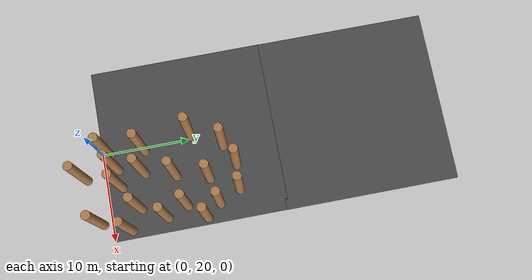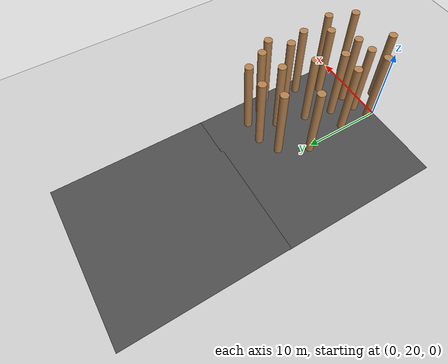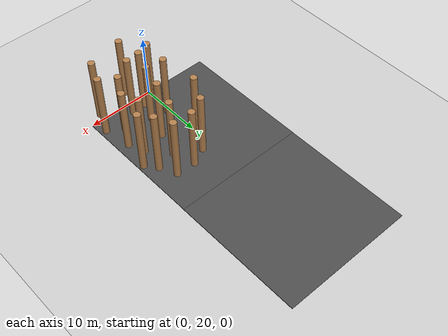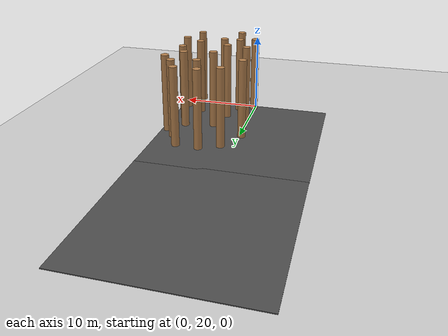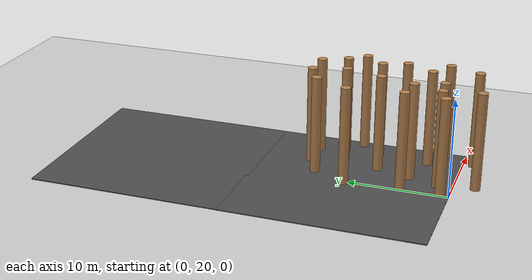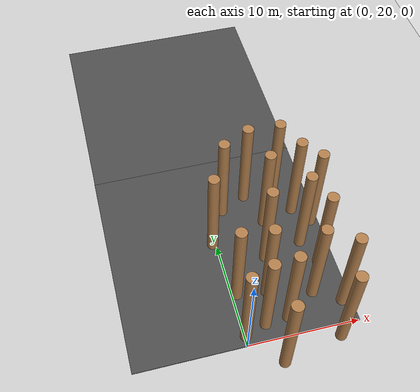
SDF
<sdf version="1.6">
 <world name="default">
  <model name="ground_plane">
   <static>1</static>
   <link name="link">
    <collision name="collision">
     <geometry><plane><normal>0 0 1</normal><size>100 100</size></plane></geometry>
     <surface><friction><ode><mu>100</mu><mu2>50</mu2></ode></friction></surface>
    </collision>
    <visual name="visual">
     <cast_shadows>0</cast_shadows>
     <geometry><plane><normal>0 0 1</normal><size>100 100</size></plane></geometry>
     <material>
      <script><uri>file://media/materials/scripts/gazebo.material</uri><name>Gazebo/Grey</name></script>
     </material>
    </visual>
   </link>
  </model>
  <model name="asphalt_plane_2">
   <static>1</static>
   <link name="link">
    <collision name="collision"><geometry><box><size>20 20 0.1</size></box></geometry></collision>
    <visual name="visual">
     <cast_shadows>0</cast_shadows>
     <geometry><box><size>20 20 0.1</size></box></geometry>
     <material>
      <script>
       <uri>model://asphalt_plane/materials/scripts</uri>
       <uri>model://asphalt_plane/materials/textures</uri>
       <name>vrc/asphalt</name>
      </script>
     </material>
    </visual>
   </link>
   <pose>0.117642 29.9977 0 0 -0 0</pose>
  </model>
  <model name="test_1">
   <link name="link_0_clone_0_clone_5_clone_12_clone_12">
    <pose>6.29003 17.4838 0.043478 0 -0 6e-06</pose>
    <inertial>
     <mass>1000</mass>
     <inertia><ixx>0.145833</ixx><ixy>0</ixy><ixz>0</ixz><iyy>0.145833</iyy><iyz>0</iyz><izz>0.125</izz></inertia>
    </inertial>
    <visual name="visual">
     <pose>0 0 4.5 0 -0 0</pose>
     <geometry><cylinder><radius>0.5</radius><length>10</length></cylinder></geometry>
     <material>
      <lighting>1</lighting>
      <script><uri>file://media/materials/scripts/gazebo.material</uri><name>Gazebo/WoodFloor</name></script>
      <ambient>0.3 0.3 0.3 1</ambient>
      <diffuse>0.7 0.7 0.7 1</diffuse>
      <specular>0.01 0.01 0.01 1</specular>
      <emissive>0 0 0 1</emissive>
      <shader type="vertex"><normal_map>__default__</normal_map></shader>
     </material>
    </visual>
    <collision name="collision">
     <pose>0 0 4.5 0 -0 0</pose>
     <geometry><cylinder><radius>0.5</radius><length>10</length></cylinder></geometry>
     <surface>
      <friction>
       <ode><mu>1</mu><mu2>1</mu2><fdir1>0 0 0</fdir1><slip1>0</slip1><slip2>0</slip2></ode>
       <torsional>
        <coefficient>1</coefficient>
        <patch_radius>0</patch_radius>
        <surface_radius>0</surface_radius>
        <use_patch_radius>1</use_patch_radius>
        <ode><slip>0</slip></ode>
       </torsional>
      </friction>
      <bounce><restitution_coefficient>0</restitution_coefficient><threshold>1e+06</threshold></bounce>
      <contact>
       <collide_without_contact>0</collide_without_contact>
       <collide_without_contact_bitmask>1</collide_without_contact_bitmask>
       <collide_bitmask>1</collide_bitmask>
       <ode>
        <soft_cfm>0</soft_cfm>
        <soft_erp>0.2</soft_erp>
        <kp>1e+13</kp>
        <kd>1</kd>
        <max_vel>0.01</max_vel>
        <min_depth>0</min_depth>
       </ode>
       <bullet>
        <split_impulse>1</split_impulse>
        <split_impulse_penetration_threshold>-0.01</split_impulse_penetration_threshold>
        <soft_cfm>0</soft_cfm>
        <soft_erp>0.2</soft_erp>
        <kp>1e+13</kp>
        <kd>1</kd>
       </bullet>
      </contact>
     </surface>
    </collision>
   </link>
   <link name="link_0_clone_0_clone_5_clone_12_clone_15">
    <pose>9.27042 4.78102 0.043478 0 -0 6e-06</pose>
    <inertial>
     <mass>1000</mass>
     <inertia><ixx>0.145833</ixx><ixy>0</ixy><ixz>0</ixz><iyy>0.145833</iyy><iyz>0</iyz><izz>0.125</izz></inertia>
    </inertial>
    <visual name="visual">
     <pose>0 0 4.5 0 -0 0</pose>
     <geometry><cylinder><radius>0.5</radius><length>10</length></cylinder></geometry>
     <material>
      <lighting>1</lighting>
      <script><uri>file://media/materials/scripts/gazebo.material</uri><name>Gazebo/WoodFloor</name></script>
      <ambient>0.3 0.3 0.3 1</ambient>
      <diffuse>0.7 0.7 0.7 1</diffuse>
      <specular>0.01 0.01 0.01 1</specular>
      <emissive>0 0 0 1</emissive>
      <shader type="vertex"><normal_map>__default__</normal_map></shader>
     </material>
    </visual>
    <collision name="collision">
     <pose>0 0 4.5 0 -0 0</pose>
     <geometry><cylinder><radius>0.5</radius><length>10</length></cylinder></geometry>
     <surface>
      <friction>
       <ode><mu>1</mu><mu2>1</mu2><fdir1>0 0 0</fdir1><slip1>0</slip1><slip2>0</slip2></ode>
       <torsional>
        <coefficient>1</coefficient>
        <patch_radius>0</patch_radius>
        <surface_radius>0</surface_radius>
        <use_patch_radius>1</use_patch_radius>
        <ode><slip>0</slip></ode>
       </torsional>
      </friction>
      <bounce><restitution_coefficient>0</restitution_coefficient><threshold>1e+06</threshold></bounce>
      <contact>
       <collide_without_contact>0</collide_without_contact>
       <collide_without_contact_bitmask>1</collide_without_contact_bitmask>
       <collide_bitmask>1</collide_bitmask>
       <ode>
        <soft_cfm>0</soft_cfm>
        <soft_erp>0.2</soft_erp>
        <kp>1e+13</kp>
        <kd>1</kd>
        <max_vel>0.01</max_vel>
        <min_depth>0</min_depth>
       </ode>
       <bullet>
        <split_impulse>1</split_impulse>
        <split_impulse_penetration_threshold>-0.01</split_impulse_penetration_threshold>
        <soft_cfm>0</soft_cfm>
        <soft_erp>0.2</soft_erp>
        <kp>1e+13</kp>
        <kd>1</kd>
       </bullet>
      </contact>
     </surface>
    </collision>
   </link>
   <link name="link_0_clone_0_clone_5_clone_12_clone_4_clone_12">
    <pose>1.39378 6.66185 0.043478 0 -0 9e-06</pose>
    <inertial>
     <mass>1000</mass>
     <inertia><ixx>0.145833</ixx><ixy>0</ixy><ixz>0</ixz><iyy>0.145833</iyy><iyz>0</iyz><izz>0.125</izz></inertia>
    </inertial>
    <visual name="visual">
     <pose>0 0 4.5 0 -0 0</pose>
     <geometry><cylinder><radius>0.5</radius><length>10</length></cylinder></geometry>
     <material>
      <lighting>1</lighting>
      <script><uri>file://media/materials/scripts/gazebo.material</uri><name>Gazebo/WoodFloor</name></script>
      <ambient>0.3 0.3 0.3 1</ambient>
      <diffuse>0.7 0.7 0.7 1</diffuse>
      <specular>0.01 0.01 0.01 1</specular>
      <emissive>0 0 0 1</emissive>
      <shader type="vertex"><normal_map>__default__</normal_map></shader>
     </material>
    </visual>
    <collision name="collision">
     <pose>0 0 4.5 0 -0 0</pose>
     <geometry><cylinder><radius>0.5</radius><length>10</length></cylinder></geometry>
     <surface>
      <friction>
       <ode><mu>1</mu><mu2>1</mu2><fdir1>0 0 0</fdir1><slip1>0</slip1><slip2>0</slip2></ode>
       <torsional>
        <coefficient>1</coefficient>
        <patch_radius>0</patch_radius>
        <surface_radius>0</surface_radius>
        <use_patch_radius>1</use_patch_radius>
        <ode><slip>0</slip></ode>
       </torsional>
      </friction>
      <bounce><restitution_coefficient>0</restitution_coefficient><threshold>1e+06</threshold></bounce>
      <contact>
       <collide_without_contact>0</collide_without_contact>
       <collide_without_contact_bitmask>1</collide_without_contact_bitmask>
       <collide_bitmask>1</collide_bitmask>
       <ode>
        <soft_cfm>0</soft_cfm>
        <soft_erp>0.2</soft_erp>
        <kp>1e+13</kp>
        <kd>1</kd>
        <max_vel>0.01</max_vel>
        <min_depth>0</min_depth>
       </ode>
       <bullet>
        <split_impulse>1</split_impulse>
        <split_impulse_penetration_threshold>-0.01</split_impulse_penetration_threshold>
        <soft_cfm>0</soft_cfm>
        <soft_erp>0.2</soft_erp>
        <kp>1e+13</kp>
        <kd>1</kd>
       </bullet>
      </contact>
     </surface>
    </collision>
   </link>
   <link name="link_0_clone_0_clone_5_clone_12_clone_4_clone_13">
    <pose>3.34294 7.33135 0.043478 0 -0 9e-06</pose>
    <inertial>
     <mass>1000</mass>
     <inertia><ixx>0.145833</ixx><ixy>0</ixy><ixz>0</ixz><iyy>0.145833</iyy><iyz>0</iyz><izz>0.125</izz></inertia>
    </inertial>
    <visual name="visual">
     <pose>0 0 4.5 0 -0 0</pose>
     <geometry><cylinder><radius>0.5</radius><length>10</length></cylinder></geometry>
     <material>
      <lighting>1</lighting>
      <script><uri>file://media/materials/scripts/gazebo.material</uri><name>Gazebo/WoodFloor</name></script>
      <ambient>0.3 0.3 0.3 1</ambient>
      <diffuse>0.7 0.7 0.7 1</diffuse>
      <specular>0.01 0.01 0.01 1</specular>
      <emissive>0 0 0 1</emissive>
      <shader type="vertex"><normal_map>__default__</normal_map></shader>
     </material>
    </visual>
    <collision name="collision">
     <pose>0 0 4.5 0 -0 0</pose>
     <geometry><cylinder><radius>0.5</radius><length>10</length></cylinder></geometry>
     <surface>
      <friction>
       <ode><mu>1</mu><mu2>1</mu2><fdir1>0 0 0</fdir1><slip1>0</slip1><slip2>0</slip2></ode>
       <torsional>
        <coefficient>1</coefficient>
        <patch_radius>0</patch_radius>
        <surface_radius>0</surface_radius>
        <use_patch_radius>1</use_patch_radius>
        <ode><slip>0</slip></ode>
       </torsional>
      </friction>
      <bounce><restitution_coefficient>0</restitution_coefficient><threshold>1e+06</threshold></bounce>
      <contact>
       <collide_without_contact>0</collide_without_contact>
       <collide_without_contact_bitmask>1</collide_without_contact_bitmask>
       <collide_bitmask>1</collide_bitmask>
       <ode>
        <soft_cfm>0</soft_cfm>
        <soft_erp>0.2</soft_erp>
        <kp>1e+13</kp>
        <kd>1</kd>
        <max_vel>0.01</max_vel>
        <min_depth>0</min_depth>
       </ode>
       <bullet>
        <split_impulse>1</split_impulse>
        <split_impulse_penetration_threshold>-0.01</split_impulse_penetration_threshold>
        <soft_cfm>0</soft_cfm>
        <soft_erp>0.2</soft_erp>
        <kp>1e+13</kp>
        <kd>1</kd>
       </bullet>
      </contact>
     </surface>
    </collision>
   </link>
   <link name="link_0_clone_0_clone_5_clone_12_clone_4_clone_14">
    <pose>5.44286 7.49755 0.043478 0 -0 9e-06</pose>
    <inertial>
     <mass>1000</mass>
     <inertia><ixx>0.145833</ixx><ixy>0</ixy><ixz>0</ixz><iyy>0.145833</iyy><iyz>0</iyz><izz>0.125</izz></inertia>
    </inertial>
    <visual name="visual">
     <pose>0 0 4.5 0 -0 0</pose>
     <geometry><cylinder><radius>0.5</radius><length>10</length></cylinder></geometry>
     <material>
      <lighting>1</lighting>
      <script><uri>file://media/materials/scripts/gazebo.material</uri><name>Gazebo/WoodFloor</name></script>
      <ambient>0.3 0.3 0.3 1</ambient>
      <diffuse>0.7 0.7 0.7 1</diffuse>
      <specular>0.01 0.01 0.01 1</specular>
      <emissive>0 0 0 1</emissive>
      <shader type="vertex"><normal_map>__default__</normal_map></shader>
     </material>
    </visual>
    <collision name="collision">
     <pose>0 0 4.5 0 -0 0</pose>
     <geometry><cylinder><radius>0.5</radius><length>10</length></cylinder></geometry>
     <surface>
      <friction>
       <ode><mu>1</mu><mu2>1</mu2><fdir1>0 0 0</fdir1><slip1>0</slip1><slip2>0</slip2></ode>
       <torsional>
        <coefficient>1</coefficient>
        <patch_radius>0</patch_radius>
        <surface_radius>0</surface_radius>
        <use_patch_radius>1</use_patch_radius>
        <ode><slip>0</slip></ode>
       </torsional>
      </friction>
      <bounce><restitution_coefficient>0</restitution_coefficient><threshold>1e+06</threshold></bounce>
      <contact>
       <collide_without_contact>0</collide_without_contact>
       <collide_without_contact_bitmask>1</collide_without_contact_bitmask>
       <collide_bitmask>1</collide_bitmask>
       <ode>
        <soft_cfm>0</soft_cfm>
        <soft_erp>0.2</soft_erp>
        <kp>1e+13</kp>
        <kd>1</kd>
        <max_vel>0.01</max_vel>
        <min_depth>0</min_depth>
       </ode>
       <bullet>
        <split_impulse>1</split_impulse>
        <split_impulse_penetration_threshold>-0.01</split_impulse_penetration_threshold>
        <soft_cfm>0</soft_cfm>
        <soft_erp>0.2</soft_erp>
        <kp>1e+13</kp>
        <kd>1</kd>
       </bullet>
      </contact>
     </surface>
    </collision>
   </link>
   <link name="link_0_clone_0_clone_5_clone_12_clone_4_clone_15">
    <pose>8.26468 9.27656 0.043478 0 -0 9e-06</pose>
    <inertial>
     <mass>1000</mass>
     <inertia><ixx>0.145833</ixx><ixy>0</ixy><ixz>0</ixz><iyy>0.145833</iyy><iyz>0</iyz><izz>0.125</izz></inertia>
    </inertial>
    <visual name="visual">
     <pose>0 0 4.5 0 -0 0</pose>
     <geometry><cylinder><radius>0.5</radius><length>10</length></cylinder></geometry>
     <material>
      <lighting>1</lighting>
      <script><uri>file://media/materials/scripts/gazebo.material</uri><name>Gazebo/WoodFloor</name></script>
      <ambient>0.3 0.3 0.3 1</ambient>
      <diffuse>0.7 0.7 0.7 1</diffuse>
      <specular>0.01 0.01 0.01 1</specular>
      <emissive>0 0 0 1</emissive>
      <shader type="vertex"><normal_map>__default__</normal_map></shader>
     </material>
    </visual>
    <collision name="collision">
     <pose>0 0 4.5 0 -0 0</pose>
     <geometry><cylinder><radius>0.5</radius><length>10</length></cylinder></geometry>
     <surface>
      <friction>
       <ode><mu>1</mu><mu2>1</mu2><fdir1>0 0 0</fdir1><slip1>0</slip1><slip2>0</slip2></ode>
       <torsional>
        <coefficient>1</coefficient>
        <patch_radius>0</patch_radius>
        <surface_radius>0</surface_radius>
        <use_patch_radius>1</use_patch_radius>
        <ode><slip>0</slip></ode>
       </torsional>
      </friction>
      <bounce><restitution_coefficient>0</restitution_coefficient><threshold>1e+06</threshold></bounce>
      <contact>
       <collide_without_contact>0</collide_without_contact>
       <collide_without_contact_bitmask>1</collide_without_contact_bitmask>
       <collide_bitmask>1</collide_bitmask>
       <ode>
        <soft_cfm>0</soft_cfm>
        <soft_erp>0.2</soft_erp>
        <kp>1e+13</kp>
        <kd>1</kd>
        <max_vel>0.01</max_vel>
        <min_depth>0</min_depth>
       </ode>
       <bullet>
        <split_impulse>1</split_impulse>
        <split_impulse_penetration_threshold>-0.01</split_impulse_penetration_threshold>
        <soft_cfm>0</soft_cfm>
        <soft_erp>0.2</soft_erp>
        <kp>1e+13</kp>
        <kd>1</kd>
       </bullet>
      </contact>
     </surface>
    </collision>
   </link>
   <link name="link_0_clone_0_clone_5_clone_12_clone_4_clone_16">
    <pose>4.33796 10.2753 0.043478 0 -0 9e-06</pose>
    <inertial>
     <mass>1000</mass>
     <inertia><ixx>0.145833</ixx><ixy>0</ixy><ixz>0</ixz><iyy>0.145833</iyy><iyz>0</iyz><izz>0.125</izz></inertia>
    </inertial>
    <visual name="visual">
     <pose>0 0 4.5 0 -0 0</pose>
     <geometry><cylinder><radius>0.5</radius><length>10</length></cylinder></geometry>
     <material>
      <lighting>1</lighting>
      <script><uri>file://media/materials/scripts/gazebo.material</uri><name>Gazebo/WoodFloor</name></script>
      <ambient>0.3 0.3 0.3 1</ambient>
      <diffuse>0.7 0.7 0.7 1</diffuse>
      <specular>0.01 0.01 0.01 1</specular>
      <emissive>0 0 0 1</emissive>
      <shader type="vertex"><normal_map>__default__</normal_map></shader>
     </material>
    </visual>
    <collision name="collision">
     <pose>0 0 4.5 0 -0 0</pose>
     <geometry><cylinder><radius>0.5</radius><length>10</length></cylinder></geometry>
     <surface>
      <friction>
       <ode><mu>1</mu><mu2>1</mu2><fdir1>0 0 0</fdir1><slip1>0</slip1><slip2>0</slip2></ode>
       <torsional>
        <coefficient>1</coefficient>
        <patch_radius>0</patch_radius>
        <surface_radius>0</surface_radius>
        <use_patch_radius>1</use_patch_radius>
        <ode><slip>0</slip></ode>
       </torsional>
      </friction>
      <bounce><restitution_coefficient>0</restitution_coefficient><threshold>1e+06</threshold></bounce>
      <contact>
       <collide_without_contact>0</collide_without_contact>
       <collide_without_contact_bitmask>1</collide_without_contact_bitmask>
       <collide_bitmask>1</collide_bitmask>
       <ode>
        <soft_cfm>0</soft_cfm>
        <soft_erp>0.2</soft_erp>
        <kp>1e+13</kp>
        <kd>1</kd>
        <max_vel>0.01</max_vel>
        <min_depth>0</min_depth>
       </ode>
       <bullet>
        <split_impulse>1</split_impulse>
        <split_impulse_penetration_threshold>-0.01</split_impulse_penetration_threshold>
        <soft_cfm>0</soft_cfm>
        <soft_erp>0.2</soft_erp>
        <kp>1e+13</kp>
        <kd>1</kd>
       </bullet>
      </contact>
     </surface>
    </collision>
   </link>
   <link name="link_0_clone_0_clone_5_clone_12_clone_4_clone_17">
    <pose>1.71949 10.6339 0.043478 0 -0 9e-06</pose>
    <inertial>
     <mass>1000</mass>
     <inertia><ixx>0.145833</ixx><ixy>0</ixy><ixz>0</ixz><iyy>0.145833</iyy><iyz>0</iyz><izz>0.125</izz></inertia>
    </inertial>
    <visual name="visual">
     <pose>0 0 4.5 0 -0 0</pose>
     <geometry><cylinder><radius>0.5</radius><length>10</length></cylinder></geometry>
     <material>
      <lighting>1</lighting>
      <script><uri>file://media/materials/scripts/gazebo.material</uri><name>Gazebo/WoodFloor</name></script>
      <ambient>0.3 0.3 0.3 1</ambient>
      <diffuse>0.7 0.7 0.7 1</diffuse>
      <specular>0.01 0.01 0.01 1</specular>
      <emissive>0 0 0 1</emissive>
      <shader type="vertex"><normal_map>__default__</normal_map></shader>
     </material>
    </visual>
    <collision name="collision">
     <pose>0 0 4.5 0 -0 0</pose>
     <geometry><cylinder><radius>0.5</radius><length>10</length></cylinder></geometry>
     <surface>
      <friction>
       <ode><mu>1</mu><mu2>1</mu2><fdir1>0 0 0</fdir1><slip1>0</slip1><slip2>0</slip2></ode>
       <torsional>
        <coefficient>1</coefficient>
        <patch_radius>0</patch_radius>
        <surface_radius>0</surface_radius>
        <use_patch_radius>1</use_patch_radius>
        <ode><slip>0</slip></ode>
       </torsional>
      </friction>
      <bounce><restitution_coefficient>0</restitution_coefficient><threshold>1e+06</threshold></bounce>
      <contact>
       <collide_without_contact>0</collide_without_contact>
       <collide_without_contact_bitmask>1</collide_without_contact_bitmask>
       <collide_bitmask>1</collide_bitmask>
       <ode>
        <soft_cfm>0</soft_cfm>
        <soft_erp>0.2</soft_erp>
        <kp>1e+13</kp>
        <kd>1</kd>
        <max_vel>0.01</max_vel>
        <min_depth>0</min_depth>
       </ode>
       <bullet>
        <split_impulse>1</split_impulse>
        <split_impulse_penetration_threshold>-0.01</split_impulse_penetration_threshold>
        <soft_cfm>0</soft_cfm>
        <soft_erp>0.2</soft_erp>
        <kp>1e+13</kp>
        <kd>1</kd>
       </bullet>
      </contact>
     </surface>
    </collision>
   </link>
   <link name="link_0_clone_0_clone_5_clone_12_clone_4_clone_20">
    <pose>3.89731 3.66965 0.043478 0 -0 9e-06</pose>
    <inertial>
     <mass>1000</mass>
     <inertia><ixx>0.145833</ixx><ixy>0</ixy><ixz>0</ixz><iyy>0.145833</iyy><iyz>0</iyz><izz>0.125</izz></inertia>
    </inertial>
    <visual name="visual">
     <pose>0 0 4.5 0 -0 0</pose>
     <geometry><cylinder><radius>0.5</radius><length>10</length></cylinder></geometry>
     <material>
      <lighting>1</lighting>
      <script><uri>file://media/materials/scripts/gazebo.material</uri><name>Gazebo/WoodFloor</name></script>
      <ambient>0.3 0.3 0.3 1</ambient>
      <diffuse>0.7 0.7 0.7 1</diffuse>
      <specular>0.01 0.01 0.01 1</specular>
      <emissive>0 0 0 1</emissive>
      <shader type="vertex"><normal_map>__default__</normal_map></shader>
     </material>
    </visual>
    <collision name="collision">
     <pose>0 0 4.5 0 -0 0</pose>
     <geometry><cylinder><radius>0.5</radius><length>10</length></cylinder></geometry>
     <surface>
      <friction>
       <ode><mu>1</mu><mu2>1</mu2><fdir1>0 0 0</fdir1><slip1>0</slip1><slip2>0</slip2></ode>
       <torsional>
        <coefficient>1</coefficient>
        <patch_radius>0</patch_radius>
        <surface_radius>0</surface_radius>
        <use_patch_radius>1</use_patch_radius>
        <ode><slip>0</slip></ode>
       </torsional>
      </friction>
      <bounce><restitution_coefficient>0</restitution_coefficient><threshold>1e+06</threshold></bounce>
      <contact>
       <collide_without_contact>0</collide_without_contact>
       <collide_without_contact_bitmask>1</collide_without_contact_bitmask>
       <collide_bitmask>1</collide_bitmask>
       <ode>
        <soft_cfm>0</soft_cfm>
        <soft_erp>0.2</soft_erp>
        <kp>1e+13</kp>
        <kd>1</kd>
        <max_vel>0.01</max_vel>
        <min_depth>0</min_depth>
       </ode>
       <bullet>
        <split_impulse>1</split_impulse>
        <split_impulse_penetration_threshold>-0.01</split_impulse_penetration_threshold>
        <soft_cfm>0</soft_cfm>
        <soft_erp>0.2</soft_erp>
        <kp>1e+13</kp>
        <kd>1</kd>
       </bullet>
      </contact>
     </surface>
    </collision>
   </link>
   <link name="link_0_clone_0_clone_5_clone_12_clone_4_clone_23">
    <pose>9.82717 12.0977 0.043478 0 -0 9e-06</pose>
    <inertial>
     <mass>1000</mass>
     <inertia><ixx>0.145833</ixx><ixy>0</ixy><ixz>0</ixz><iyy>0.145833</iyy><iyz>0</iyz><izz>0.125</izz></inertia>
    </inertial>
    <visual name="visual">
     <pose>0 0 4.5 0 -0 0</pose>
     <geometry><cylinder><radius>0.5</radius><length>10</length></cylinder></geometry>
     <material>
      <lighting>1</lighting>
      <script><uri>file://media/materials/scripts/gazebo.material</uri><name>Gazebo/WoodFloor</name></script>
      <ambient>0.3 0.3 0.3 1</ambient>
      <diffuse>0.7 0.7 0.7 1</diffuse>
      <specular>0.01 0.01 0.01 1</specular>
      <emissive>0 0 0 1</emissive>
      <shader type="vertex"><normal_map>__default__</normal_map></shader>
     </material>
    </visual>
    <collision name="collision">
     <pose>0 0 4.5 0 -0 0</pose>
     <geometry><cylinder><radius>0.5</radius><length>10</length></cylinder></geometry>
     <surface>
      <friction>
       <ode><mu>1</mu><mu2>1</mu2><fdir1>0 0 0</fdir1><slip1>0</slip1><slip2>0</slip2></ode>
       <torsional>
        <coefficient>1</coefficient>
        <patch_radius>0</patch_radius>
        <surface_radius>0</surface_radius>
        <use_patch_radius>1</use_patch_radius>
        <ode><slip>0</slip></ode>
       </torsional>
      </friction>
      <bounce><restitution_coefficient>0</restitution_coefficient><threshold>1e+06</threshold></bounce>
      <contact>
       <collide_without_contact>0</collide_without_contact>
       <collide_without_contact_bitmask>1</collide_without_contact_bitmask>
       <collide_bitmask>1</collide_bitmask>
       <ode>
        <soft_cfm>0</soft_cfm>
        <soft_erp>0.2</soft_erp>
        <kp>1e+13</kp>
        <kd>1</kd>
        <max_vel>0.01</max_vel>
        <min_depth>0</min_depth>
       </ode>
       <bullet>
        <split_impulse>1</split_impulse>
        <split_impulse_penetration_threshold>-0.01</split_impulse_penetration_threshold>
        <soft_cfm>0</soft_cfm>
        <soft_erp>0.2</soft_erp>
        <kp>1e+13</kp>
        <kd>1</kd>
       </bullet>
      </contact>
     </surface>
    </collision>
   </link>
   <link name="link_0_clone_0_clone_5_clone_12_clone_4_clone_24">
    <pose>8.90669 14.495 0.043478 0 -0 9e-06</pose>
    <inertial>
     <mass>1000</mass>
     <inertia><ixx>0.145833</ixx><ixy>0</ixy><ixz>0</ixz><iyy>0.145833</iyy><iyz>0</iyz><izz>0.125</izz></inertia>
    </inertial>
    <visual name="visual">
     <pose>0 0 4.5 0 -0 0</pose>
     <geometry><cylinder><radius>0.5</radius><length>10</length></cylinder></geometry>
     <material>
      <lighting>1</lighting>
      <script><uri>file://media/materials/scripts/gazebo.material</uri><name>Gazebo/WoodFloor</name></script>
      <ambient>0.3 0.3 0.3 1</ambient>
      <diffuse>0.7 0.7 0.7 1</diffuse>
      <specular>0.01 0.01 0.01 1</specular>
      <emissive>0 0 0 1</emissive>
      <shader type="vertex"><normal_map>__default__</normal_map></shader>
     </material>
    </visual>
    <collision name="collision">
     <pose>0 0 4.5 0 -0 0</pose>
     <geometry><cylinder><radius>0.5</radius><length>10</length></cylinder></geometry>
     <surface>
      <friction>
       <ode><mu>1</mu><mu2>1</mu2><fdir1>0 0 0</fdir1><slip1>0</slip1><slip2>0</slip2></ode>
       <torsional>
        <coefficient>1</coefficient>
        <patch_radius>0</patch_radius>
        <surface_radius>0</surface_radius>
        <use_patch_radius>1</use_patch_radius>
        <ode><slip>0</slip></ode>
       </torsional>
      </friction>
      <bounce><restitution_coefficient>0</restitution_coefficient><threshold>1e+06</threshold></bounce>
      <contact>
       <collide_without_contact>0</collide_without_contact>
       <collide_without_contact_bitmask>1</collide_without_contact_bitmask>
       <collide_bitmask>1</collide_bitmask>
       <ode>
        <soft_cfm>0</soft_cfm>
        <soft_erp>0.2</soft_erp>
        <kp>1e+13</kp>
        <kd>1</kd>
        <max_vel>0.01</max_vel>
        <min_depth>0</min_depth>
       </ode>
       <bullet>
        <split_impulse>1</split_impulse>
        <split_impulse_penetration_threshold>-0.01</split_impulse_penetration_threshold>
        <soft_cfm>0</soft_cfm>
        <soft_erp>0.2</soft_erp>
        <kp>1e+13</kp>
        <kd>1</kd>
       </bullet>
      </contact>
     </surface>
    </collision>
   </link>
   <link name="link_0_clone_0_clone_5_clone_12_clone_4_clone_30">
    <pose>9.33056 18.1694 0.043478 0 -0 9e-06</pose>
    <inertial>
     <mass>1000</mass>
     <inertia><ixx>0.145833</ixx><ixy>0</ixy><ixz>0</ixz><iyy>0.145833</iyy><iyz>0</iyz><izz>0.125</izz></inertia>
    </inertial>
    <visual name="visual">
     <pose>0 0 4.5 0 -0 0</pose>
     <geometry><cylinder><radius>0.5</radius><length>10</length></cylinder></geometry>
     <material>
      <lighting>1</lighting>
      <script><uri>file://media/materials/scripts/gazebo.material</uri><name>Gazebo/WoodFloor</name></script>
      <ambient>0.3 0.3 0.3 1</ambient>
      <diffuse>0.7 0.7 0.7 1</diffuse>
      <specular>0.01 0.01 0.01 1</specular>
      <emissive>0 0 0 1</emissive>
      <shader type="vertex"><normal_map>__default__</normal_map></shader>
     </material>
    </visual>
    <collision name="collision">
     <pose>0 0 4.5 0 -0 0</pose>
     <geometry><cylinder><radius>0.5</radius><length>10</length></cylinder></geometry>
     <surface>
      <friction>
       <ode><mu>1</mu><mu2>1</mu2><fdir1>0 0 0</fdir1><slip1>0</slip1><slip2>0</slip2></ode>
       <torsional>
        <coefficient>1</coefficient>
        <patch_radius>0</patch_radius>
        <surface_radius>0</surface_radius>
        <use_patch_radius>1</use_patch_radius>
        <ode><slip>0</slip></ode>
       </torsional>
      </friction>
      <bounce><restitution_coefficient>0</restitution_coefficient><threshold>1e+06</threshold></bounce>
      <contact>
       <collide_without_contact>0</collide_without_contact>
       <collide_without_contact_bitmask>1</collide_without_contact_bitmask>
       <collide_bitmask>1</collide_bitmask>
       <ode>
        <soft_cfm>0</soft_cfm>
        <soft_erp>0.2</soft_erp>
        <kp>1e+13</kp>
        <kd>1</kd>
        <max_vel>0.01</max_vel>
        <min_depth>0</min_depth>
       </ode>
       <bullet>
        <split_impulse>1</split_impulse>
        <split_impulse_penetration_threshold>-0.01</split_impulse_penetration_threshold>
        <soft_cfm>0</soft_cfm>
        <soft_erp>0.2</soft_erp>
        <kp>1e+13</kp>
        <kd>1</kd>
       </bullet>
      </contact>
     </surface>
    </collision>
   </link>
   <link name="link_0_clone_0_clone_5_clone_12_clone_4_clone_31">
    <pose>10.6602 16.4969 0.043478 0 -0 9e-06</pose>
    <inertial>
     <mass>1000</mass>
     <inertia><ixx>0.145833</ixx><ixy>0</ixy><ixz>0</ixz><iyy>0.145833</iyy><iyz>0</iyz><izz>0.125</izz></inertia>
    </inertial>
    <visual name="visual">
     <pose>0 0 4.5 0 -0 0</pose>
     <geometry><cylinder><radius>0.5</radius><length>10</length></cylinder></geometry>
     <material>
      <lighting>1</lighting>
      <script><uri>file://media/materials/scripts/gazebo.material</uri><name>Gazebo/WoodFloor</name></script>
      <ambient>0.3 0.3 0.3 1</ambient>
      <diffuse>0.7 0.7 0.7 1</diffuse>
      <specular>0.01 0.01 0.01 1</specular>
      <emissive>0 0 0 1</emissive>
      <shader type="vertex"><normal_map>__default__</normal_map></shader>
     </material>
    </visual>
    <collision name="collision">
     <pose>0 0 4.5 0 -0 0</pose>
     <geometry><cylinder><radius>0.5</radius><length>10</length></cylinder></geometry>
     <surface>
      <friction>
       <ode><mu>1</mu><mu2>1</mu2><fdir1>0 0 0</fdir1><slip1>0</slip1><slip2>0</slip2></ode>
       <torsional>
        <coefficient>1</coefficient>
        <patch_radius>0</patch_radius>
        <surface_radius>0</surface_radius>
        <use_patch_radius>1</use_patch_radius>
        <ode><slip>0</slip></ode>
       </torsional>
      </friction>
      <bounce><restitution_coefficient>0</restitution_coefficient><threshold>1e+06</threshold></bounce>
      <contact>
       <collide_without_contact>0</collide_without_contact>
       <collide_without_contact_bitmask>1</collide_without_contact_bitmask>
       <collide_bitmask>1</collide_bitmask>
       <ode>
        <soft_cfm>0</soft_cfm>
        <soft_erp>0.2</soft_erp>
        <kp>1e+13</kp>
        <kd>1</kd>
        <max_vel>0.01</max_vel>
        <min_depth>0</min_depth>
       </ode>
       <bullet>
        <split_impulse>1</split_impulse>
        <split_impulse_penetration_threshold>-0.01</split_impulse_penetration_threshold>
        <soft_cfm>0</soft_cfm>
        <soft_erp>0.2</soft_erp>
        <kp>1e+13</kp>
        <kd>1</kd>
       </bullet>
      </contact>
     </surface>
    </collision>
   </link>
   <link name="link_0_clone_0_clone_5_clone_12_clone_4_clone_33">
    <pose>5.27388 20.7532 0.043478 0 -0 9e-06</pose>
    <inertial>
     <mass>1000</mass>
     <inertia><ixx>0.145833</ixx><ixy>0</ixy><ixz>0</ixz><iyy>0.145833</iyy><iyz>0</iyz><izz>0.125</izz></inertia>
    </inertial>
    <visual name="visual">
     <pose>0 0 4.5 0 -0 0</pose>
     <geometry><cylinder><radius>0.5</radius><length>10</length></cylinder></geometry>
     <material>
      <lighting>1</lighting>
      <script><uri>file://media/materials/scripts/gazebo.material</uri><name>Gazebo/WoodFloor</name></script>
      <ambient>0.3 0.3 0.3 1</ambient>
      <diffuse>0.7 0.7 0.7 1</diffuse>
      <specular>0.01 0.01 0.01 1</specular>
      <emissive>0 0 0 1</emissive>
      <shader type="vertex"><normal_map>__default__</normal_map></shader>
     </material>
    </visual>
    <collision name="collision">
     <pose>0 0 4.5 0 -0 0</pose>
     <geometry><cylinder><radius>0.5</radius><length>10</length></cylinder></geometry>
     <surface>
      <friction>
       <ode><mu>1</mu><mu2>1</mu2><fdir1>0 0 0</fdir1><slip1>0</slip1><slip2>0</slip2></ode>
       <torsional>
        <coefficient>1</coefficient>
        <patch_radius>0</patch_radius>
        <surface_radius>0</surface_radius>
        <use_patch_radius>1</use_patch_radius>
        <ode><slip>0</slip></ode>
       </torsional>
      </friction>
      <bounce><restitution_coefficient>0</restitution_coefficient><threshold>1e+06</threshold></bounce>
      <contact>
       <collide_without_contact>0</collide_without_contact>
       <collide_without_contact_bitmask>1</collide_without_contact_bitmask>
       <collide_bitmask>1</collide_bitmask>
       <ode>
        <soft_cfm>0</soft_cfm>
        <soft_erp>0.2</soft_erp>
        <kp>1e+13</kp>
        <kd>1</kd>
        <max_vel>0.01</max_vel>
        <min_depth>0</min_depth>
       </ode>
       <bullet>
        <split_impulse>1</split_impulse>
        <split_impulse_penetration_threshold>-0.01</split_impulse_penetration_threshold>
        <soft_cfm>0</soft_cfm>
        <soft_erp>0.2</soft_erp>
        <kp>1e+13</kp>
        <kd>1</kd>
       </bullet>
      </contact>
     </surface>
    </collision>
   </link>
   <link name="link_0_clone_0_clone_5_clone_12_clone_4_clone_34">
    <pose>8.17031 20.618 0.043478 0 -0 9e-06</pose>
    <inertial>
     <mass>1000</mass>
     <inertia><ixx>0.145833</ixx><ixy>0</ixy><ixz>0</ixz><iyy>0.145833</iyy><iyz>0</iyz><izz>0.125</izz></inertia>
    </inertial>
    <visual name="visual">
     <pose>0 0 4.5 0 -0 0</pose>
     <geometry><cylinder><radius>0.5</radius><length>10</length></cylinder></geometry>
     <material>
      <lighting>1</lighting>
      <script><uri>file://media/materials/scripts/gazebo.material</uri><name>Gazebo/WoodFloor</name></script>
      <ambient>0.3 0.3 0.3 1</ambient>
      <diffuse>0.7 0.7 0.7 1</diffuse>
      <specular>0.01 0.01 0.01 1</specular>
      <emissive>0 0 0 1</emissive>
      <shader type="vertex"><normal_map>__default__</normal_map></shader>
     </material>
    </visual>
    <collision name="collision">
     <pose>0 0 4.5 0 -0 0</pose>
     <geometry><cylinder><radius>0.5</radius><length>10</length></cylinder></geometry>
     <surface>
      <friction>
       <ode><mu>1</mu><mu2>1</mu2><fdir1>0 0 0</fdir1><slip1>0</slip1><slip2>0</slip2></ode>
       <torsional>
        <coefficient>1</coefficient>
        <patch_radius>0</patch_radius>
        <surface_radius>0</surface_radius>
        <use_patch_radius>1</use_patch_radius>
        <ode><slip>0</slip></ode>
       </torsional>
      </friction>
      <bounce><restitution_coefficient>0</restitution_coefficient><threshold>1e+06</threshold></bounce>
      <contact>
       <collide_without_contact>0</collide_without_contact>
       <collide_without_contact_bitmask>1</collide_without_contact_bitmask>
       <collide_bitmask>1</collide_bitmask>
       <ode>
        <soft_cfm>0</soft_cfm>
        <soft_erp>0.2</soft_erp>
        <kp>1e+13</kp>
        <kd>1</kd>
        <max_vel>0.01</max_vel>
        <min_depth>0</min_depth>
       </ode>
       <bullet>
        <split_impulse>1</split_impulse>
        <split_impulse_penetration_threshold>-0.01</split_impulse_penetration_threshold>
        <soft_cfm>0</soft_cfm>
        <soft_erp>0.2</soft_erp>
        <kp>1e+13</kp>
        <kd>1</kd>
       </bullet>
      </contact>
     </surface>
    </collision>
   </link>
   <link name="link_0_clone_0_clone_5_clone_12_clone_4_clone_35">
    <pose>0.985525 16.1572 0.043478 0 -0 9e-06</pose>
    <inertial>
     <mass>1000</mass>
     <inertia><ixx>0.145833</ixx><ixy>0</ixy><ixz>0</ixz><iyy>0.145833</iyy><iyz>0</iyz><izz>0.125</izz></inertia>
    </inertial>
    <visual name="visual">
     <pose>0 0 4.5 0 -0 0</pose>
     <geometry><cylinder><radius>0.5</radius><length>10</length></cylinder></geometry>
     <material>
      <lighting>1</lighting>
      <script><uri>file://media/materials/scripts/gazebo.material</uri><name>Gazebo/WoodFloor</name></script>
      <ambient>0.3 0.3 0.3 1</ambient>
      <diffuse>0.7 0.7 0.7 1</diffuse>
      <specular>0.01 0.01 0.01 1</specular>
      <emissive>0 0 0 1</emissive>
      <shader type="vertex"><normal_map>__default__</normal_map></shader>
     </material>
    </visual>
    <collision name="collision">
     <pose>0 0 4.5 0 -0 0</pose>
     <geometry><cylinder><radius>0.5</radius><length>10</length></cylinder></geometry>
     <surface>
      <friction>
       <ode><mu>1</mu><mu2>1</mu2><fdir1>0 0 0</fdir1><slip1>0</slip1><slip2>0</slip2></ode>
       <torsional>
        <coefficient>1</coefficient>
        <patch_radius>0</patch_radius>
        <surface_radius>0</surface_radius>
        <use_patch_radius>1</use_patch_radius>
        <ode><slip>0</slip></ode>
       </torsional>
      </friction>
      <bounce><restitution_coefficient>0</restitution_coefficient><threshold>1e+06</threshold></bounce>
      <contact>
       <collide_without_contact>0</collide_without_contact>
       <collide_without_contact_bitmask>1</collide_without_contact_bitmask>
       <collide_bitmask>1</collide_bitmask>
       <ode>
        <soft_cfm>0</soft_cfm>
        <soft_erp>0.2</soft_erp>
        <kp>1e+13</kp>
        <kd>1</kd>
        <max_vel>0.01</max_vel>
        <min_depth>0</min_depth>
       </ode>
       <bullet>
        <split_impulse>1</split_impulse>
        <split_impulse_penetration_threshold>-0.01</split_impulse_penetration_threshold>
        <soft_cfm>0</soft_cfm>
        <soft_erp>0.2</soft_erp>
        <kp>1e+13</kp>
        <kd>1</kd>
       </bullet>
      </contact>
     </surface>
    </collision>
   </link>
   <link name="link_0_clone_0_clone_5_clone_12_clone_4_clone_36">
    <pose>5.2739 13.7532 0.043478 0 -0 9e-06</pose>
    <inertial>
     <mass>1000</mass>
     <inertia><ixx>0.145833</ixx><ixy>0</ixy><ixz>0</ixz><iyy>0.145833</iyy><iyz>0</iyz><izz>0.125</izz></inertia>
    </inertial>
    <visual name="visual">
     <pose>0 0 4.5 0 -0 0</pose>
     <geometry><cylinder><radius>0.5</radius><length>10</length></cylinder></geometry>
     <material>
      <lighting>1</lighting>
      <script><uri>file://media/materials/scripts/gazebo.material</uri><name>Gazebo/WoodFloor</name></script>
      <ambient>0.3 0.3 0.3 1</ambient>
      <diffuse>0.7 0.7 0.7 1</diffuse>
      <specular>0.01 0.01 0.01 1</specular>
      <emissive>0 0 0 1</emissive>
      <shader type="vertex"><normal_map>__default__</normal_map></shader>
     </material>
    </visual>
    <collision name="collision">
     <pose>0 0 4.5 0 -0 0</pose>
     <geometry><cylinder><radius>0.5</radius><length>10</length></cylinder></geometry>
     <surface>
      <friction>
       <ode><mu>1</mu><mu2>1</mu2><fdir1>0 0 0</fdir1><slip1>0</slip1><slip2>0</slip2></ode>
       <torsional>
        <coefficient>1</coefficient>
        <patch_radius>0</patch_radius>
        <surface_radius>0</surface_radius>
        <use_patch_radius>1</use_patch_radius>
        <ode><slip>0</slip></ode>
       </torsional>
      </friction>
      <bounce><restitution_coefficient>0</restitution_coefficient><threshold>1e+06</threshold></bounce>
      <contact>
       <collide_without_contact>0</collide_without_contact>
       <collide_without_contact_bitmask>1</collide_without_contact_bitmask>
       <collide_bitmask>1</collide_bitmask>
       <ode>
        <soft_cfm>0</soft_cfm>
        <soft_erp>0.2</soft_erp>
        <kp>1e+13</kp>
        <kd>1</kd>
        <max_vel>0.01</max_vel>
        <min_depth>0</min_depth>
       </ode>
       <bullet>
        <split_impulse>1</split_impulse>
        <split_impulse_penetration_threshold>-0.01</split_impulse_penetration_threshold>
        <soft_cfm>0</soft_cfm>
        <soft_erp>0.2</soft_erp>
        <kp>1e+13</kp>
        <kd>1</kd>
       </bullet>
      </contact>
     </surface>
    </collision>
   </link>
   <link name="link_0_clone_0_clone_5_clone_12_clone_4_clone_38">
    <pose>2.80049 19.5895 0.043478 0 -0 9e-06</pose>
    <inertial>
     <mass>1000</mass>
     <inertia><ixx>0.145833</ixx><ixy>0</ixy><ixz>0</ixz><iyy>0.145833</iyy><iyz>0</iyz><izz>0.125</izz></inertia>
    </inertial>
    <visual name="visual">
     <pose>0 0 4.5 0 -0 0</pose>
     <geometry><cylinder><radius>0.5</radius><length>10</length></cylinder></geometry>
     <material>
      <lighting>1</lighting>
      <script><uri>file://media/materials/scripts/gazebo.material</uri><name>Gazebo/WoodFloor</name></script>
      <ambient>0.3 0.3 0.3 1</ambient>
      <diffuse>0.7 0.7 0.7 1</diffuse>
      <specular>0.01 0.01 0.01 1</specular>
      <emissive>0 0 0 1</emissive>
      <shader type="vertex"><normal_map>__default__</normal_map></shader>
     </material>
    </visual>
    <collision name="collision">
     <pose>0 0 4.5 0 -0 0</pose>
     <geometry><cylinder><radius>0.5</radius><length>10</length></cylinder></geometry>
     <surface>
      <friction>
       <ode><mu>1</mu><mu2>1</mu2><fdir1>0 0 0</fdir1><slip1>0</slip1><slip2>0</slip2></ode>
       <torsional>
        <coefficient>1</coefficient>
        <patch_radius>0</patch_radius>
        <surface_radius>0</surface_radius>
        <use_patch_radius>1</use_patch_radius>
        <ode><slip>0</slip></ode>
       </torsional>
      </friction>
      <bounce><restitution_coefficient>0</restitution_coefficient><threshold>1e+06</threshold></bounce>
      <contact>
       <collide_without_contact>0</collide_without_contact>
       <collide_without_contact_bitmask>1</collide_without_contact_bitmask>
       <collide_bitmask>1</collide_bitmask>
       <ode>
        <soft_cfm>0</soft_cfm>
        <soft_erp>0.2</soft_erp>
        <kp>1e+13</kp>
        <kd>1</kd>
        <max_vel>0.01</max_vel>
        <min_depth>0</min_depth>
       </ode>
       <bullet>
        <split_impulse>1</split_impulse>
        <split_impulse_penetration_threshold>-0.01</split_impulse_penetration_threshold>
        <soft_cfm>0</soft_cfm>
        <soft_erp>0.2</soft_erp>
        <kp>1e+13</kp>
        <kd>1</kd>
       </bullet>
      </contact>
     </surface>
    </collision>
   </link>
   <link name="link_0_clone_0_clone_5_clone_19_clone_16">
    <pose>10.5244 7.88191 0.043478 0 -0 6e-06</pose>
    <inertial>
     <mass>1000</mass>
     <inertia><ixx>0.145833</ixx><ixy>0</ixy><ixz>0</ixz><iyy>0.145833</iyy><iyz>0</iyz><izz>0.125</izz></inertia>
    </inertial>
    <visual name="visual">
     <pose>0 0 4.5 0 -0 0</pose>
     <geometry><cylinder><radius>0.5</radius><length>10</length></cylinder></geometry>
     <material>
      <lighting>1</lighting>
      <script><uri>file://media/materials/scripts/gazebo.material</uri><name>Gazebo/WoodFloor</name></script>
      <ambient>0.3 0.3 0.3 1</ambient>
      <diffuse>0.7 0.7 0.7 1</diffuse>
      <specular>0.01 0.01 0.01 1</specular>
      <emissive>0 0 0 1</emissive>
      <shader type="vertex"><normal_map>__default__</normal_map></shader>
     </material>
    </visual>
    <collision name="collision">
     <pose>0 0 4.5 0 -0 0</pose>
     <geometry><cylinder><radius>0.5</radius><length>10</length></cylinder></geometry>
     <surface>
      <friction>
       <ode><mu>1</mu><mu2>1</mu2><fdir1>0 0 0</fdir1><slip1>0</slip1><slip2>0</slip2></ode>
       <torsional>
        <coefficient>1</coefficient>
        <patch_radius>0</patch_radius>
        <surface_radius>0</surface_radius>
        <use_patch_radius>1</use_patch_radius>
        <ode><slip>0</slip></ode>
       </torsional>
      </friction>
      <bounce><restitution_coefficient>0</restitution_coefficient><threshold>1e+06</threshold></bounce>
      <contact>
       <collide_without_contact>0</collide_without_contact>
       <collide_without_contact_bitmask>1</collide_without_contact_bitmask>
       <collide_bitmask>1</collide_bitmask>
       <ode>
        <soft_cfm>0</soft_cfm>
        <soft_erp>0.2</soft_erp>
        <kp>1e+13</kp>
        <kd>1</kd>
        <max_vel>0.01</max_vel>
        <min_depth>0</min_depth>
       </ode>
       <bullet>
        <split_impulse>1</split_impulse>
        <split_impulse_penetration_threshold>-0.01</split_impulse_penetration_threshold>
        <soft_cfm>0</soft_cfm>
        <soft_erp>0.2</soft_erp>
        <kp>1e+13</kp>
        <kd>1</kd>
       </bullet>
      </contact>
     </surface>
    </collision>
   </link>
   <static>1</static>
   <pose>-1.27395 14.2468 0.506522 0 0 -3e-06</pose>
  </model>
  <model name="asphalt_plane">
   <link name="link">
    <inertial>
     <mass>1</mass>
     <inertia><ixx>1</ixx><ixy>0</ixy><ixz>0</ixz><iyy>1</iyy><iyz>0</iyz><izz>1</izz></inertia>
    </inertial>
    <visual name="visual">
     <cast_shadows>0</cast_shadows>
     <geometry><box><size>20 20 0.1</size></box></geometry>
     <material>
      <script>
       <uri>model://asphalt_plane/materials/scripts</uri>
       <uri>model://asphalt_plane/materials/textures</uri>
       <name>vrc/asphalt</name>
      </script>
      <ambient>0.5 0.5 0.5 1</ambient>
      <diffuse>0.5 0.5 0.5 1</diffuse>
      <specular>0.2 0.2 0.2 1</specular>
      <emissive>0 0 0 1</emissive>
      <shader type="vertex"><normal_map>__default__</normal_map></shader>
     </material>
    </visual>
    <collision name="collision">
     <geometry><box><size>20 20 0.1</size></box></geometry>
     <surface>
      <friction>
       <ode><mu>1</mu><mu2>1</mu2><fdir1>0 0 0</fdir1><slip1>0</slip1><slip2>0</slip2></ode>
       <torsional>
        <coefficient>1</coefficient>
        <patch_radius>0</patch_radius>
        <surface_radius>0</surface_radius>
        <use_patch_radius>1</use_patch_radius>
        <ode><slip>0</slip></ode>
       </torsional>
      </friction>
      <bounce><restitution_coefficient>0</restitution_coefficient><threshold>1e+06</threshold></bounce>
      <contact>
       <collide_without_contact>0</collide_without_contact>
       <collide_without_contact_bitmask>1</collide_without_contact_bitmask>
       <collide_bitmask>1</collide_bitmask>
       <ode>
        <soft_cfm>0</soft_cfm>
        <soft_erp>0.2</soft_erp>
        <kp>1e+13</kp>
        <kd>1</kd>
        <max_vel>0.01</max_vel>
        <min_depth>0</min_depth>
       </ode>
       <bullet>
        <split_impulse>1</split_impulse>
        <split_impulse_penetration_threshold>-0.01</split_impulse_penetration_threshold>
        <soft_cfm>0</soft_cfm>
        <soft_erp>0.2</soft_erp>
        <kp>1e+13</kp>
        <kd>1</kd>
       </bullet>
      </contact>
     </surface>
    </collision>
   </link>
   <static>1</static>
   <pose>0.138576 49.6975 0 0 -0 0</pose>
  </model>
 </world>
</sdf>
